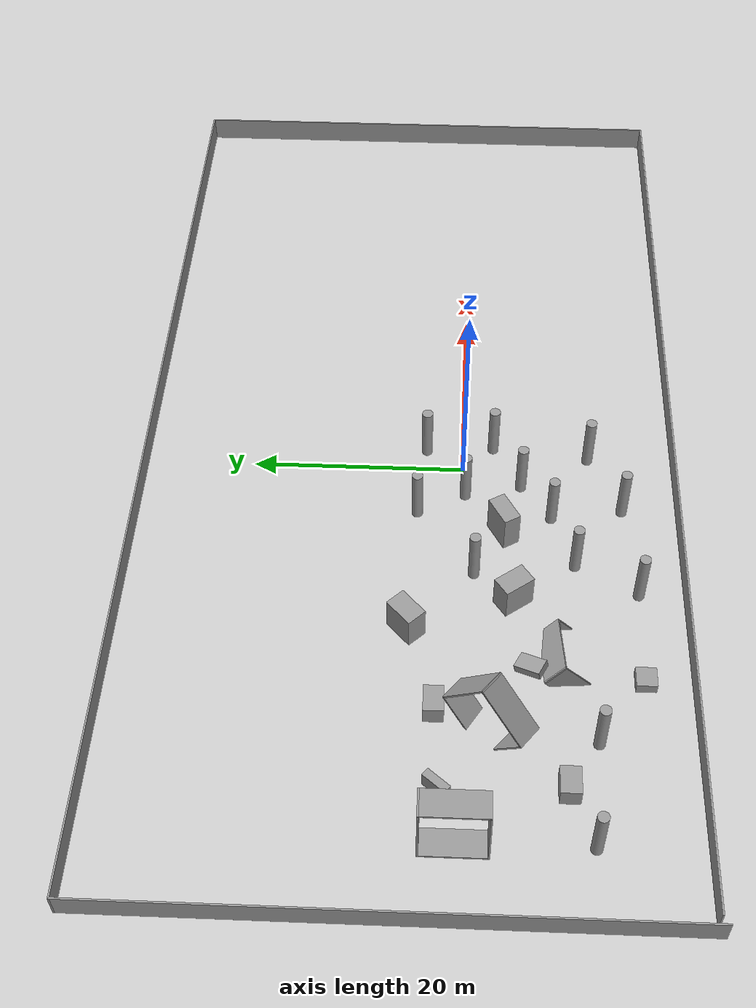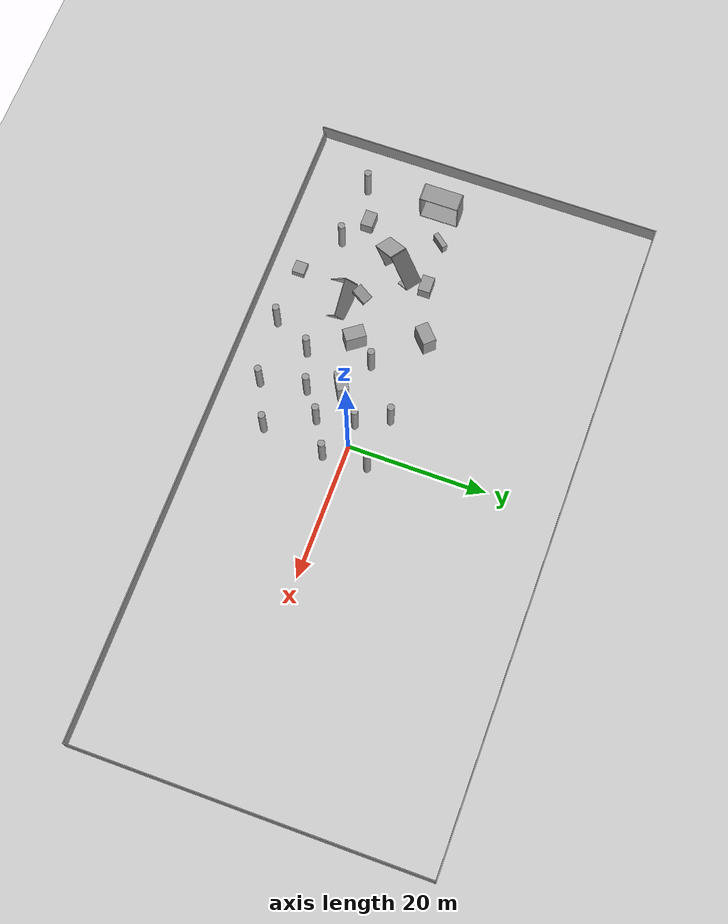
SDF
<sdf version="1.6">
 <world name="default">
  <model name="ground_plane">
   <static>1</static>
   <link name="link">
    <collision name="collision">
     <geometry><plane><normal>0 0 1</normal><size>100 100</size></plane></geometry>
     <surface><friction><ode><mu>100</mu><mu2>50</mu2></ode></friction></surface>
    </collision>
    <visual name="visual">
     <cast_shadows>0</cast_shadows>
     <geometry><plane><normal>0 0 1</normal><size>100 100</size></plane></geometry>
     <material>
      <script><uri>file://media/materials/scripts/gazebo.material</uri><name>Gazebo/Grey</name></script>
     </material>
    </visual>
   </link>
  </model>
  <model name="unit_cylinder_clone">
   <pose>2.67985 -2.8047 2.75253 0 -0 0.004488</pose>
   <link name="link">
    <inertial>
     <mass>1</mass>
     <inertia><ixx>0.145833</ixx><ixy>0</ixy><ixz>0</ixz><iyy>0.145833</iyy><iyz>0</iyz><izz>0.125</izz></inertia>
    </inertial>
    <collision name="collision">
     <geometry><cylinder><radius>0.5</radius><length>5.50507</length></cylinder></geometry>
    </collision>
    <visual name="visual">
     <geometry><cylinder><radius>0.5</radius><length>5.50507</length></cylinder></geometry>
     <material>
      <script><name>Gazebo/Grey</name><uri>file://media/materials/scripts/gazebo.material</uri></script>
     </material>
    </visual>
   </link>
  </model>
  <model name="unit_cylinder_clone_0">
   <pose>2.22738 3.56207 2.75253 0 -0 0.003085</pose>
   <link name="link">
    <inertial>
     <mass>1</mass>
     <inertia><ixx>0.145833</ixx><ixy>0</ixy><ixz>0</ixz><iyy>0.145833</iyy><iyz>0</iyz><izz>0.125</izz></inertia>
    </inertial>
    <collision name="collision">
     <geometry><cylinder><radius>0.5</radius><length>5.50507</length></cylinder></geometry>
    </collision>
    <visual name="visual">
     <geometry><cylinder><radius>0.5</radius><length>5.50507</length></cylinder></geometry>
     <material>
      <script><name>Gazebo/Grey</name><uri>file://media/materials/scripts/gazebo.material</uri></script>
     </material>
    </visual>
   </link>
  </model>
  <model name="unit_cylinder_clone_9_clone_0">
   <pose>-3.15492 -0.195106 2.75253 0 -0 0.005376</pose>
   <link name="link">
    <inertial>
     <mass>1</mass>
     <inertia><ixx>0.145833</ixx><ixy>0</ixy><ixz>0</ixz><iyy>0.145833</iyy><iyz>0</iyz><izz>0.125</izz></inertia>
    </inertial>
    <collision name="collision">
     <geometry><cylinder><radius>0.5</radius><length>5.50507</length></cylinder></geometry>
    </collision>
    <visual name="visual">
     <geometry><cylinder><radius>0.5</radius><length>5.50507</length></cylinder></geometry>
     <material>
      <script><name>Gazebo/Grey</name><uri>file://media/materials/scripts/gazebo.material</uri></script>
     </material>
    </visual>
   </link>
  </model>
  <model name="unit_cylinder_clone_9_clone_1">
   <pose>-1.9629 -5.42737 2.75253 0 -0 0.00527</pose>
   <link name="link">
    <inertial>
     <mass>1</mass>
     <inertia><ixx>0.145833</ixx><ixy>0</ixy><ixz>0</ixz><iyy>0.145833</iyy><iyz>0</iyz><izz>0.125</izz></inertia>
    </inertial>
    <collision name="collision">
     <geometry><cylinder><radius>0.5</radius><length>5.50507</length></cylinder></geometry>
    </collision>
    <visual name="visual">
     <geometry><cylinder><radius>0.5</radius><length>5.50507</length></cylinder></geometry>
     <material>
      <script><name>Gazebo/Grey</name><uri>file://media/materials/scripts/gazebo.material</uri></script>
     </material>
    </visual>
   </link>
  </model>
  <model name="unit_cylinder_clone_9_clone_3">
   <pose>-5.66981 -8.22129 2.75253 0 -0 0.005161</pose>
   <link name="link">
    <inertial>
     <mass>1</mass>
     <inertia><ixx>0.145833</ixx><ixy>0</ixy><ixz>0</ixz><iyy>0.145833</iyy><iyz>0</iyz><izz>0.125</izz></inertia>
    </inertial>
    <collision name="collision">
     <geometry><cylinder><radius>0.5</radius><length>5.50507</length></cylinder></geometry>
    </collision>
    <visual name="visual">
     <geometry><cylinder><radius>0.5</radius><length>5.50507</length></cylinder></geometry>
     <material>
      <script><name>Gazebo/Grey</name><uri>file://media/materials/scripts/gazebo.material</uri></script>
     </material>
    </visual>
   </link>
  </model>
  <model name="unit_cylinder_clone_9_clone_4">
   <pose>1.59321 -11.8524 2.75253 0 -0 0.005584</pose>
   <link name="link">
    <inertial>
     <mass>1</mass>
     <inertia><ixx>0.145833</ixx><ixy>0</ixy><ixz>0</ixz><iyy>0.145833</iyy><iyz>0</iyz><izz>0.125</izz></inertia>
    </inertial>
    <collision name="collision">
     <geometry><cylinder><radius>0.5</radius><length>5.50507</length></cylinder></geometry>
    </collision>
    <visual name="visual">
     <geometry><cylinder><radius>0.5</radius><length>5.50507</length></cylinder></geometry>
     <material>
      <script><name>Gazebo/Grey</name><uri>file://media/materials/scripts/gazebo.material</uri></script>
     </material>
    </visual>
   </link>
  </model>
  <model name="unit_cylinder_clone_9_clone_5">
   <pose>-5.39726 4.23937 2.75253 0 -0 0.005542</pose>
   <link name="link">
    <inertial>
     <mass>1</mass>
     <inertia><ixx>0.145833</ixx><ixy>0</ixy><ixz>0</ixz><iyy>0.145833</iyy><iyz>0</iyz><izz>0.125</izz></inertia>
    </inertial>
    <collision name="collision">
     <geometry><cylinder><radius>0.5</radius><length>5.50507</length></cylinder></geometry>
    </collision>
    <visual name="visual">
     <geometry><cylinder><radius>0.5</radius><length>5.50507</length></cylinder></geometry>
     <material>
      <script><name>Gazebo/Grey</name><uri>file://media/materials/scripts/gazebo.material</uri></script>
     </material>
    </visual>
   </link>
  </model>
  <model name="unit_box_2_clone">
   <pose>-7.49323 -3.73623 1.88991 -1e-06 0 -1.04582</pose>
   <link name="link">
    <inertial>
     <mass>1</mass>
     <inertia>
      <ixx>0.166667</ixx>
      <ixy>0</ixy>
      <ixz>0</ixz>
      <iyy>0.166667</iyy>
      <iyz>0</iyz>
      <izz>0.166667</izz>
     </inertia>
    </inertial>
    <collision name="collision"><geometry><box><size>1.62301 2.95919 3.77983</size></box></geometry></collision>
    <visual name="visual">
     <geometry><box><size>1.62301 2.95919 3.77983</size></box></geometry>
     <material>
      <script><name>Gazebo/Grey</name><uri>file://media/materials/scripts/gazebo.material</uri></script>
     </material>
    </visual>
   </link>
  </model>
  <model name="unit_box_2_clone_1">
   <pose>-15.0529 -4.60285 1.66336 1e-06 -0 0.629421</pose>
   <link name="link">
    <inertial>
     <mass>1</mass>
     <inertia>
      <ixx>0.166667</ixx>
      <ixy>0</ixy>
      <ixz>0</ixz>
      <iyy>0.166667</iyy>
      <iyz>0</iyz>
      <izz>0.166667</izz>
     </inertia>
    </inertial>
    <collision name="collision"><geometry><box><size>1.91266 2.95919 3.32673</size></box></geometry></collision>
    <visual name="visual">
     <geometry><box><size>1.91266 2.95919 3.32673</size></box></geometry>
     <material>
      <script><name>Gazebo/Grey</name><uri>file://media/materials/scripts/gazebo.material</uri></script>
     </material>
    </visual>
   </link>
  </model>
  <model name="unit_cylinder_clone_9_clone_5_clone">
   <pose>-12.2421 -1.09463 2.75253 0 -0 0.005619</pose>
   <link name="link">
    <inertial>
     <mass>1</mass>
     <inertia><ixx>0.145833</ixx><ixy>0</ixy><ixz>0</ixz><iyy>0.145833</iyy><iyz>0</iyz><izz>0.125</izz></inertia>
    </inertial>
    <collision name="collision">
     <geometry><cylinder><radius>0.5</radius><length>5.50507</length></cylinder></geometry>
    </collision>
    <visual name="visual">
     <geometry><cylinder><radius>0.5</radius><length>5.50507</length></cylinder></geometry>
     <material>
      <script><name>Gazebo/Grey</name><uri>file://media/materials/scripts/gazebo.material</uri></script>
     </material>
    </visual>
   </link>
  </model>
  <model name="unit_cylinder_clone_9_clone_5_clone_0">
   <pose>-11.0811 -10.24 2.75253 0 -0 0.005805</pose>
   <link name="link">
    <inertial>
     <mass>1</mass>
     <inertia><ixx>0.145833</ixx><ixy>0</ixy><ixz>0</ixz><iyy>0.145833</iyy><iyz>0</iyz><izz>0.125</izz></inertia>
    </inertial>
    <collision name="collision">
     <geometry><cylinder><radius>0.5</radius><length>5.50507</length></cylinder></geometry>
    </collision>
    <visual name="visual">
     <geometry><cylinder><radius>0.5</radius><length>5.50507</length></cylinder></geometry>
     <material>
      <script><name>Gazebo/Grey</name><uri>file://media/materials/scripts/gazebo.material</uri></script>
     </material>
    </visual>
   </link>
  </model>
  <model name="vRoom_clone_3_clone_clone_9_clone_2_clone_0">
   <link name="Wall_0">
    <pose>-2.8 -0 -1e-06 -0 -0 -1.5708</pose>
    <velocity_decay><linear>0</linear><angular>0</angular></velocity_decay>
    <visual name="Wall_0_Visual">
     <pose>0 0 1.25 0 -0 0</pose>
     <geometry><box><size>5.75 0.15 2.5</size></box></geometry>
     <material>
      <script><uri>file://media/materials/scripts/gazebo.material</uri><name>Gazebo/Grey</name></script>
      <ambient>1 1 1 1</ambient>
     </material>
    </visual>
    <collision name="Wall_0_Collision">
     <pose>0 0 1.25 0 -0 0</pose>
     <geometry><box><size>5.75 0.15 2.5</size></box></geometry>
     <surface>
      <friction>
       <ode><mu>1</mu><mu2>1</mu2><fdir1>0 0 0</fdir1><slip1>0</slip1><slip2>0</slip2></ode>
       <torsional>
        <coefficient>1</coefficient>
        <patch_radius>0</patch_radius>
        <surface_radius>0</surface_radius>
        <use_patch_radius>1</use_patch_radius>
        <ode><slip>0</slip></ode>
       </torsional>
      </friction>
      <bounce><restitution_coefficient>0</restitution_coefficient><threshold>1e+06</threshold></bounce>
      <contact>
       <collide_without_contact>0</collide_without_contact>
       <collide_without_contact_bitmask>1</collide_without_contact_bitmask>
       <collide_bitmask>1</collide_bitmask>
       <ode>
        <soft_cfm>0</soft_cfm>
        <soft_erp>0.2</soft_erp>
        <kp>1e+13</kp>
        <kd>1</kd>
        <max_vel>0.01</max_vel>
        <min_depth>0</min_depth>
       </ode>
       <bullet>
        <split_impulse>1</split_impulse>
        <split_impulse_penetration_threshold>-0.01</split_impulse_penetration_threshold>
        <soft_cfm>0</soft_cfm>
        <soft_erp>0.2</soft_erp>
        <kp>1e+13</kp>
        <kd>1</kd>
       </bullet>
      </contact>
     </surface>
    </collision>
   </link>
   <link name="Wall_1">
    <pose>2e-06 -2.8 2e-06 0 -0 0</pose>
    <velocity_decay><linear>0</linear><angular>0</angular></velocity_decay>
    <visual name="Wall_1_Visual">
     <pose>0 0 1.25 0 -0 0</pose>
     <geometry><box><size>5.75 0.15 2.5</size></box></geometry>
     <material>
      <script><uri>file://media/materials/scripts/gazebo.material</uri><name>Gazebo/Grey</name></script>
      <ambient>1 1 1 1</ambient>
     </material>
    </visual>
    <collision name="Wall_1_Collision">
     <pose>0 0 1.25 0 -0 0</pose>
     <geometry><box><size>5.75 0.15 2.5</size></box></geometry>
     <surface>
      <friction>
       <ode><mu>1</mu><mu2>1</mu2><fdir1>0 0 0</fdir1><slip1>0</slip1><slip2>0</slip2></ode>
       <torsional>
        <coefficient>1</coefficient>
        <patch_radius>0</patch_radius>
        <surface_radius>0</surface_radius>
        <use_patch_radius>1</use_patch_radius>
        <ode><slip>0</slip></ode>
       </torsional>
      </friction>
      <bounce><restitution_coefficient>0</restitution_coefficient><threshold>1e+06</threshold></bounce>
      <contact>
       <collide_without_contact>0</collide_without_contact>
       <collide_without_contact_bitmask>1</collide_without_contact_bitmask>
       <collide_bitmask>1</collide_bitmask>
       <ode>
        <soft_cfm>0</soft_cfm>
        <soft_erp>0.2</soft_erp>
        <kp>1e+13</kp>
        <kd>1</kd>
        <max_vel>0.01</max_vel>
        <min_depth>0</min_depth>
       </ode>
       <bullet>
        <split_impulse>1</split_impulse>
        <split_impulse_penetration_threshold>-0.01</split_impulse_penetration_threshold>
        <soft_cfm>0</soft_cfm>
        <soft_erp>0.2</soft_erp>
        <kp>1e+13</kp>
        <kd>1</kd>
       </bullet>
      </contact>
     </surface>
    </collision>
   </link>
   <link name="Wall_2">
    <pose>2.8 0 1e-06 0 -0 1.5708</pose>
    <velocity_decay><linear>0</linear><angular>0</angular></velocity_decay>
    <visual name="Wall_2_Visual">
     <pose>0 0 1.25 0 -0 0</pose>
     <geometry><box><size>5.75 0.15 2.5</size></box></geometry>
     <material>
      <script><uri>file://media/materials/scripts/gazebo.material</uri><name>Gazebo/Grey</name></script>
      <ambient>1 1 1 1</ambient>
     </material>
    </visual>
    <collision name="Wall_2_Collision">
     <pose>0 0 1.25 0 -0 0</pose>
     <geometry><box><size>5.75 0.15 2.5</size></box></geometry>
     <surface>
      <friction>
       <ode><mu>1</mu><mu2>1</mu2><fdir1>0 0 0</fdir1><slip1>0</slip1><slip2>0</slip2></ode>
       <torsional>
        <coefficient>1</coefficient>
        <patch_radius>0</patch_radius>
        <surface_radius>0</surface_radius>
        <use_patch_radius>1</use_patch_radius>
        <ode><slip>0</slip></ode>
       </torsional>
      </friction>
      <bounce><restitution_coefficient>0</restitution_coefficient><threshold>1e+06</threshold></bounce>
      <contact>
       <collide_without_contact>0</collide_without_contact>
       <collide_without_contact_bitmask>1</collide_without_contact_bitmask>
       <collide_bitmask>1</collide_bitmask>
       <ode>
        <soft_cfm>0</soft_cfm>
        <soft_erp>0.2</soft_erp>
        <kp>1e+13</kp>
        <kd>1</kd>
        <max_vel>0.01</max_vel>
        <min_depth>0</min_depth>
       </ode>
       <bullet>
        <split_impulse>1</split_impulse>
        <split_impulse_penetration_threshold>-0.01</split_impulse_penetration_threshold>
        <soft_cfm>0</soft_cfm>
        <soft_erp>0.2</soft_erp>
        <kp>1e+13</kp>
        <kd>1</kd>
       </bullet>
      </contact>
     </surface>
    </collision>
   </link>
   <link name="Wall_3">
    <pose>-2e-06 2.8 -2e-06 0 -0 3.14159</pose>
    <velocity_decay><linear>0</linear><angular>0</angular></velocity_decay>
    <visual name="Wall_3_Visual">
     <pose>0 0 1.25 0 -0 0</pose>
     <geometry><box><size>5.75 0.15 2.5</size></box></geometry>
     <material>
      <script><uri>file://media/materials/scripts/gazebo.material</uri><name>Gazebo/Grey</name></script>
      <ambient>1 1 1 1</ambient>
     </material>
    </visual>
    <collision name="Wall_3_Collision">
     <pose>0 0 1.25 0 -0 0</pose>
     <geometry><box><size>5.75 0.15 2.5</size></box></geometry>
     <surface>
      <friction>
       <ode><mu>1</mu><mu2>1</mu2><fdir1>0 0 0</fdir1><slip1>0</slip1><slip2>0</slip2></ode>
       <torsional>
        <coefficient>1</coefficient>
        <patch_radius>0</patch_radius>
        <surface_radius>0</surface_radius>
        <use_patch_radius>1</use_patch_radius>
        <ode><slip>0</slip></ode>
       </torsional>
      </friction>
      <bounce><restitution_coefficient>0</restitution_coefficient><threshold>1e+06</threshold></bounce>
      <contact>
       <collide_without_contact>0</collide_without_contact>
       <collide_without_contact_bitmask>1</collide_without_contact_bitmask>
       <collide_bitmask>1</collide_bitmask>
       <ode>
        <soft_cfm>0</soft_cfm>
        <soft_erp>0.2</soft_erp>
        <kp>1e+13</kp>
        <kd>1</kd>
        <max_vel>0.01</max_vel>
        <min_depth>0</min_depth>
       </ode>
       <bullet>
        <split_impulse>1</split_impulse>
        <split_impulse_penetration_threshold>-0.01</split_impulse_penetration_threshold>
        <soft_cfm>0</soft_cfm>
        <soft_erp>0.2</soft_erp>
        <kp>1e+13</kp>
        <kd>1</kd>
       </bullet>
      </contact>
     </surface>
    </collision>
   </link>
   <static>1</static>
   <pose>-20.5223 -10.7964 -0.348991 2.375 -0.169882 -3.06562</pose>
  </model>
  <model name="vRoom_clone_3_clone_clone_9_clone_clone_0">
   <link name="Wall_0">
    <pose>-2.8 -0 -1e-06 -0 -0 -1.5708</pose>
    <velocity_decay><linear>0</linear><angular>0</angular></velocity_decay>
    <visual name="Wall_0_Visual">
     <pose>0 0 1.25 0 -0 0</pose>
     <geometry><box><size>5.75 0.15 2.5</size></box></geometry>
     <material>
      <script><uri>file://media/materials/scripts/gazebo.material</uri><name>Gazebo/Grey</name></script>
      <ambient>1 1 1 1</ambient>
     </material>
    </visual>
    <collision name="Wall_0_Collision">
     <pose>0 0 1.25 0 -0 0</pose>
     <geometry><box><size>5.75 0.15 2.5</size></box></geometry>
     <surface>
      <friction>
       <ode><mu>1</mu><mu2>1</mu2><fdir1>0 0 0</fdir1><slip1>0</slip1><slip2>0</slip2></ode>
       <torsional>
        <coefficient>1</coefficient>
        <patch_radius>0</patch_radius>
        <surface_radius>0</surface_radius>
        <use_patch_radius>1</use_patch_radius>
        <ode><slip>0</slip></ode>
       </torsional>
      </friction>
      <bounce><restitution_coefficient>0</restitution_coefficient><threshold>1e+06</threshold></bounce>
      <contact>
       <collide_without_contact>0</collide_without_contact>
       <collide_without_contact_bitmask>1</collide_without_contact_bitmask>
       <collide_bitmask>1</collide_bitmask>
       <ode>
        <soft_cfm>0</soft_cfm>
        <soft_erp>0.2</soft_erp>
        <kp>1e+13</kp>
        <kd>1</kd>
        <max_vel>0.01</max_vel>
        <min_depth>0</min_depth>
       </ode>
       <bullet>
        <split_impulse>1</split_impulse>
        <split_impulse_penetration_threshold>-0.01</split_impulse_penetration_threshold>
        <soft_cfm>0</soft_cfm>
        <soft_erp>0.2</soft_erp>
        <kp>1e+13</kp>
        <kd>1</kd>
       </bullet>
      </contact>
     </surface>
    </collision>
   </link>
   <link name="Wall_1">
    <pose>2e-06 -2.8 2e-06 0 -0 0</pose>
    <velocity_decay><linear>0</linear><angular>0</angular></velocity_decay>
    <visual name="Wall_1_Visual">
     <pose>0 0 1.25 0 -0 0</pose>
     <geometry><box><size>5.75 0.15 2.5</size></box></geometry>
     <material>
      <script><uri>file://media/materials/scripts/gazebo.material</uri><name>Gazebo/Grey</name></script>
      <ambient>1 1 1 1</ambient>
     </material>
    </visual>
    <collision name="Wall_1_Collision">
     <pose>0 0 1.25 0 -0 0</pose>
     <geometry><box><size>5.75 0.15 2.5</size></box></geometry>
     <surface>
      <friction>
       <ode><mu>1</mu><mu2>1</mu2><fdir1>0 0 0</fdir1><slip1>0</slip1><slip2>0</slip2></ode>
       <torsional>
        <coefficient>1</coefficient>
        <patch_radius>0</patch_radius>
        <surface_radius>0</surface_radius>
        <use_patch_radius>1</use_patch_radius>
        <ode><slip>0</slip></ode>
       </torsional>
      </friction>
      <bounce><restitution_coefficient>0</restitution_coefficient><threshold>1e+06</threshold></bounce>
      <contact>
       <collide_without_contact>0</collide_without_contact>
       <collide_without_contact_bitmask>1</collide_without_contact_bitmask>
       <collide_bitmask>1</collide_bitmask>
       <ode>
        <soft_cfm>0</soft_cfm>
        <soft_erp>0.2</soft_erp>
        <kp>1e+13</kp>
        <kd>1</kd>
        <max_vel>0.01</max_vel>
        <min_depth>0</min_depth>
       </ode>
       <bullet>
        <split_impulse>1</split_impulse>
        <split_impulse_penetration_threshold>-0.01</split_impulse_penetration_threshold>
        <soft_cfm>0</soft_cfm>
        <soft_erp>0.2</soft_erp>
        <kp>1e+13</kp>
        <kd>1</kd>
       </bullet>
      </contact>
     </surface>
    </collision>
   </link>
   <link name="Wall_2">
    <pose>2.8 0 1e-06 0 -0 1.5708</pose>
    <velocity_decay><linear>0</linear><angular>0</angular></velocity_decay>
    <visual name="Wall_2_Visual">
     <pose>0 0 1.25 0 -0 0</pose>
     <geometry><box><size>5.75 0.15 2.5</size></box></geometry>
     <material>
      <script><uri>file://media/materials/scripts/gazebo.material</uri><name>Gazebo/Grey</name></script>
      <ambient>1 1 1 1</ambient>
     </material>
    </visual>
    <collision name="Wall_2_Collision">
     <pose>0 0 1.25 0 -0 0</pose>
     <geometry><box><size>5.75 0.15 2.5</size></box></geometry>
     <surface>
      <friction>
       <ode><mu>1</mu><mu2>1</mu2><fdir1>0 0 0</fdir1><slip1>0</slip1><slip2>0</slip2></ode>
       <torsional>
        <coefficient>1</coefficient>
        <patch_radius>0</patch_radius>
        <surface_radius>0</surface_radius>
        <use_patch_radius>1</use_patch_radius>
        <ode><slip>0</slip></ode>
       </torsional>
      </friction>
      <bounce><restitution_coefficient>0</restitution_coefficient><threshold>1e+06</threshold></bounce>
      <contact>
       <collide_without_contact>0</collide_without_contact>
       <collide_without_contact_bitmask>1</collide_without_contact_bitmask>
       <collide_bitmask>1</collide_bitmask>
       <ode>
        <soft_cfm>0</soft_cfm>
        <soft_erp>0.2</soft_erp>
        <kp>1e+13</kp>
        <kd>1</kd>
        <max_vel>0.01</max_vel>
        <min_depth>0</min_depth>
       </ode>
       <bullet>
        <split_impulse>1</split_impulse>
        <split_impulse_penetration_threshold>-0.01</split_impulse_penetration_threshold>
        <soft_cfm>0</soft_cfm>
        <soft_erp>0.2</soft_erp>
        <kp>1e+13</kp>
        <kd>1</kd>
       </bullet>
      </contact>
     </surface>
    </collision>
   </link>
   <link name="Wall_3">
    <pose>-2e-06 2.8 -2e-06 0 -0 3.14159</pose>
    <velocity_decay><linear>0</linear><angular>0</angular></velocity_decay>
    <visual name="Wall_3_Visual">
     <pose>0 0 1.25 0 -0 0</pose>
     <geometry><box><size>5.75 0.15 2.5</size></box></geometry>
     <material>
      <script><uri>file://media/materials/scripts/gazebo.material</uri><name>Gazebo/Grey</name></script>
      <ambient>1 1 1 1</ambient>
     </material>
    </visual>
    <collision name="Wall_3_Collision">
     <pose>0 0 1.25 0 -0 0</pose>
     <geometry><box><size>5.75 0.15 2.5</size></box></geometry>
     <surface>
      <friction>
       <ode><mu>1</mu><mu2>1</mu2><fdir1>0 0 0</fdir1><slip1>0</slip1><slip2>0</slip2></ode>
       <torsional>
        <coefficient>1</coefficient>
        <patch_radius>0</patch_radius>
        <surface_radius>0</surface_radius>
        <use_patch_radius>1</use_patch_radius>
        <ode><slip>0</slip></ode>
       </torsional>
      </friction>
      <bounce><restitution_coefficient>0</restitution_coefficient><threshold>1e+06</threshold></bounce>
      <contact>
       <collide_without_contact>0</collide_without_contact>
       <collide_without_contact_bitmask>1</collide_without_contact_bitmask>
       <collide_bitmask>1</collide_bitmask>
       <ode>
        <soft_cfm>0</soft_cfm>
        <soft_erp>0.2</soft_erp>
        <kp>1e+13</kp>
        <kd>1</kd>
        <max_vel>0.01</max_vel>
        <min_depth>0</min_depth>
       </ode>
       <bullet>
        <split_impulse>1</split_impulse>
        <split_impulse_penetration_threshold>-0.01</split_impulse_penetration_threshold>
        <soft_cfm>0</soft_cfm>
        <soft_erp>0.2</soft_erp>
        <kp>1e+13</kp>
        <kd>1</kd>
       </bullet>
      </contact>
     </surface>
    </collision>
   </link>
   <static>1</static>
   <pose>-26.7767 -3.33195 2.16038 1.45974 -0.860248 -2.1368</pose>
  </model>
  <model name="unit_cylinder_clone_7_clone_1_clone_6">
   <pose>-29.1099 -11.6645 2.75253 0 -0 0.004882</pose>
   <link name="link">
    <inertial>
     <mass>1</mass>
     <inertia><ixx>0.145833</ixx><ixy>0</ixy><ixz>0</ixz><iyy>0.145833</iyy><iyz>0</iyz><izz>0.125</izz></inertia>
    </inertial>
    <collision name="collision">
     <geometry><cylinder><radius>0.5</radius><length>5.50507</length></cylinder></geometry>
    </collision>
    <visual name="visual">
     <geometry><cylinder><radius>0.5</radius><length>5.50507</length></cylinder></geometry>
     <material>
      <script><name>Gazebo/Grey</name><uri>file://media/materials/scripts/gazebo.material</uri></script>
     </material>
    </visual>
   </link>
  </model>
  <model name="unit_box_clone_clone_clone_0">
   <pose>-33.7123 1.70544 0.788226 -7e-06 -0 -0.682291</pose>
   <link name="link">
    <inertial>
     <mass>1</mass>
     <inertia>
      <ixx>0.166667</ixx>
      <ixy>0</ixy>
      <ixz>0</ixz>
      <iyy>0.166667</iyy>
      <iyz>0</iyz>
      <izz>0.166667</izz>
     </inertia>
    </inertial>
    <collision name="collision"><geometry><box><size>0.770315 2.44518 1.57647</size></box></geometry></collision>
    <visual name="visual">
     <geometry><box><size>0.770315 2.44518 1.57647</size></box></geometry>
     <material>
      <script><name>Gazebo/Grey</name><uri>file://media/materials/scripts/gazebo.material</uri></script>
     </material>
    </visual>
   </link>
  </model>
  <model name="unit_box_clone_clone_clone_1">
   <pose>-22.1221 -6.07576 0.657028 -1.57082 -1.33781 1.09114</pose>
   <link name="link">
    <inertial>
     <mass>1</mass>
     <inertia>
      <ixx>0.166667</ixx>
      <ixy>0</ixy>
      <ixz>0</ixz>
      <iyy>0.166667</iyy>
      <iyz>0</iyz>
      <izz>0.166667</izz>
     </inertia>
    </inertial>
    <collision name="collision"><geometry><box><size>0.770315 2.44518 1.57647</size></box></geometry></collision>
    <visual name="visual">
     <geometry><box><size>0.770315 2.44518 1.57647</size></box></geometry>
     <material>
      <script><name>Gazebo/Grey</name><uri>file://media/materials/scripts/gazebo.material</uri></script>
     </material>
    </visual>
   </link>
  </model>
  <model name="unit_box_clone_1_clone">
   <pose>-33.3357 -9.06014 0.926305 0 -0 1.57092</pose>
   <link name="link">
    <inertial>
     <mass>1</mass>
     <inertia>
      <ixx>0.166667</ixx>
      <ixy>0</ixy>
      <ixz>0</ixz>
      <iyy>0.166667</iyy>
      <iyz>0</iyz>
      <izz>0.166667</izz>
     </inertia>
    </inertial>
    <collision name="collision"><geometry><box><size>1.76997 2.44518 1.85261</size></box></geometry></collision>
    <visual name="visual">
     <geometry><box><size>1.76997 2.44518 1.85261</size></box></geometry>
     <material>
      <script><name>Gazebo/Grey</name><uri>file://media/materials/scripts/gazebo.material</uri></script>
     </material>
    </visual>
   </link>
  </model>
  <model name="unit_box_clone_1_clone_0">
   <pose>-26.3002 2.15248 0.926301 0 -5e-06 1.5861</pose>
   <link name="link">
    <inertial>
     <mass>1</mass>
     <inertia>
      <ixx>0.166667</ixx>
      <ixy>0</ixy>
      <ixz>0</ixz>
      <iyy>0.166667</iyy>
      <iyz>0</iyz>
      <izz>0.166667</izz>
     </inertia>
    </inertial>
    <collision name="collision"><geometry><box><size>1.76997 2.44518 1.85261</size></box></geometry></collision>
    <visual name="visual">
     <geometry><box><size>1.76997 2.44518 1.85261</size></box></geometry>
     <material>
      <script><name>Gazebo/Grey</name><uri>file://media/materials/scripts/gazebo.material</uri></script>
     </material>
    </visual>
   </link>
  </model>
  <model name="unit_cylinder_clone_7_clone_1_clone_clone">
   <pose>-14.0799 -15.8397 2.75253 0 -0 0.004916</pose>
   <link name="link">
    <inertial>
     <mass>1</mass>
     <inertia><ixx>0.145833</ixx><ixy>0</ixy><ixz>0</ixz><iyy>0.145833</iyy><iyz>0</iyz><izz>0.125</izz></inertia>
    </inertial>
    <collision name="collision">
     <geometry><cylinder><radius>0.5</radius><length>5.50507</length></cylinder></geometry>
    </collision>
    <visual name="visual">
     <geometry><cylinder><radius>0.5</radius><length>5.50507</length></cylinder></geometry>
     <material>
      <script><name>Gazebo/Grey</name><uri>file://media/materials/scripts/gazebo.material</uri></script>
     </material>
    </visual>
   </link>
  </model>
  <model name="vRoom_clone_3_clone_clone_9_clone_1_clone">
   <link name="Wall_0">
    <pose>-2.8 -0 -1e-06 -0 -0 -1.5708</pose>
    <velocity_decay><linear>0</linear><angular>0</angular></velocity_decay>
    <visual name="Wall_0_Visual">
     <pose>0 0 1.25 0 -0 0</pose>
     <geometry><box><size>5.75 0.15 2.5</size></box></geometry>
     <material>
      <script><uri>file://media/materials/scripts/gazebo.material</uri><name>Gazebo/Grey</name></script>
      <ambient>1 1 1 1</ambient>
     </material>
    </visual>
    <collision name="Wall_0_Collision">
     <pose>0 0 1.25 0 -0 0</pose>
     <geometry><box><size>5.75 0.15 2.5</size></box></geometry>
     <surface>
      <friction>
       <ode><mu>1</mu><mu2>1</mu2><fdir1>0 0 0</fdir1><slip1>0</slip1><slip2>0</slip2></ode>
       <torsional>
        <coefficient>1</coefficient>
        <patch_radius>0</patch_radius>
        <surface_radius>0</surface_radius>
        <use_patch_radius>1</use_patch_radius>
        <ode><slip>0</slip></ode>
       </torsional>
      </friction>
      <bounce><restitution_coefficient>0</restitution_coefficient><threshold>1e+06</threshold></bounce>
      <contact>
       <collide_without_contact>0</collide_without_contact>
       <collide_without_contact_bitmask>1</collide_without_contact_bitmask>
       <collide_bitmask>1</collide_bitmask>
       <ode>
        <soft_cfm>0</soft_cfm>
        <soft_erp>0.2</soft_erp>
        <kp>1e+13</kp>
        <kd>1</kd>
        <max_vel>0.01</max_vel>
        <min_depth>0</min_depth>
       </ode>
       <bullet>
        <split_impulse>1</split_impulse>
        <split_impulse_penetration_threshold>-0.01</split_impulse_penetration_threshold>
        <soft_cfm>0</soft_cfm>
        <soft_erp>0.2</soft_erp>
        <kp>1e+13</kp>
        <kd>1</kd>
       </bullet>
      </contact>
     </surface>
    </collision>
   </link>
   <link name="Wall_1">
    <pose>2e-06 -2.8 2e-06 0 -0 0</pose>
    <velocity_decay><linear>0</linear><angular>0</angular></velocity_decay>
    <visual name="Wall_1_Visual">
     <pose>0 0 1.25 0 -0 0</pose>
     <geometry><box><size>5.75 0.15 2.5</size></box></geometry>
     <material>
      <script><uri>file://media/materials/scripts/gazebo.material</uri><name>Gazebo/Grey</name></script>
      <ambient>1 1 1 1</ambient>
     </material>
    </visual>
    <collision name="Wall_1_Collision">
     <pose>0 0 1.25 0 -0 0</pose>
     <geometry><box><size>5.75 0.15 2.5</size></box></geometry>
     <surface>
      <friction>
       <ode><mu>1</mu><mu2>1</mu2><fdir1>0 0 0</fdir1><slip1>0</slip1><slip2>0</slip2></ode>
       <torsional>
        <coefficient>1</coefficient>
        <patch_radius>0</patch_radius>
        <surface_radius>0</surface_radius>
        <use_patch_radius>1</use_patch_radius>
        <ode><slip>0</slip></ode>
       </torsional>
      </friction>
      <bounce><restitution_coefficient>0</restitution_coefficient><threshold>1e+06</threshold></bounce>
      <contact>
       <collide_without_contact>0</collide_without_contact>
       <collide_without_contact_bitmask>1</collide_without_contact_bitmask>
       <collide_bitmask>1</collide_bitmask>
       <ode>
        <soft_cfm>0</soft_cfm>
        <soft_erp>0.2</soft_erp>
        <kp>1e+13</kp>
        <kd>1</kd>
        <max_vel>0.01</max_vel>
        <min_depth>0</min_depth>
       </ode>
       <bullet>
        <split_impulse>1</split_impulse>
        <split_impulse_penetration_threshold>-0.01</split_impulse_penetration_threshold>
        <soft_cfm>0</soft_cfm>
        <soft_erp>0.2</soft_erp>
        <kp>1e+13</kp>
        <kd>1</kd>
       </bullet>
      </contact>
     </surface>
    </collision>
   </link>
   <link name="Wall_2">
    <pose>2.8 0 1e-06 0 -0 1.5708</pose>
    <velocity_decay><linear>0</linear><angular>0</angular></velocity_decay>
    <visual name="Wall_2_Visual">
     <pose>0 0 1.25 0 -0 0</pose>
     <geometry><box><size>5.75 0.15 2.5</size></box></geometry>
     <material>
      <script><uri>file://media/materials/scripts/gazebo.material</uri><name>Gazebo/Grey</name></script>
      <ambient>1 1 1 1</ambient>
     </material>
    </visual>
    <collision name="Wall_2_Collision">
     <pose>0 0 1.25 0 -0 0</pose>
     <geometry><box><size>5.75 0.15 2.5</size></box></geometry>
     <surface>
      <friction>
       <ode><mu>1</mu><mu2>1</mu2><fdir1>0 0 0</fdir1><slip1>0</slip1><slip2>0</slip2></ode>
       <torsional>
        <coefficient>1</coefficient>
        <patch_radius>0</patch_radius>
        <surface_radius>0</surface_radius>
        <use_patch_radius>1</use_patch_radius>
        <ode><slip>0</slip></ode>
       </torsional>
      </friction>
      <bounce><restitution_coefficient>0</restitution_coefficient><threshold>1e+06</threshold></bounce>
      <contact>
       <collide_without_contact>0</collide_without_contact>
       <collide_without_contact_bitmask>1</collide_without_contact_bitmask>
       <collide_bitmask>1</collide_bitmask>
       <ode>
        <soft_cfm>0</soft_cfm>
        <soft_erp>0.2</soft_erp>
        <kp>1e+13</kp>
        <kd>1</kd>
        <max_vel>0.01</max_vel>
        <min_depth>0</min_depth>
       </ode>
       <bullet>
        <split_impulse>1</split_impulse>
        <split_impulse_penetration_threshold>-0.01</split_impulse_penetration_threshold>
        <soft_cfm>0</soft_cfm>
        <soft_erp>0.2</soft_erp>
        <kp>1e+13</kp>
        <kd>1</kd>
       </bullet>
      </contact>
     </surface>
    </collision>
   </link>
   <link name="Wall_3">
    <pose>-2e-06 2.8 -2e-06 0 -0 3.14159</pose>
    <velocity_decay><linear>0</linear><angular>0</angular></velocity_decay>
    <visual name="Wall_3_Visual">
     <pose>0 0 1.25 0 -0 0</pose>
     <geometry><box><size>5.75 0.15 2.5</size></box></geometry>
     <material>
      <script><uri>file://media/materials/scripts/gazebo.material</uri><name>Gazebo/Grey</name></script>
      <ambient>1 1 1 1</ambient>
     </material>
    </visual>
    <collision name="Wall_3_Collision">
     <pose>0 0 1.25 0 -0 0</pose>
     <geometry><box><size>5.75 0.15 2.5</size></box></geometry>
     <surface>
      <friction>
       <ode><mu>1</mu><mu2>1</mu2><fdir1>0 0 0</fdir1><slip1>0</slip1><slip2>0</slip2></ode>
       <torsional>
        <coefficient>1</coefficient>
        <patch_radius>0</patch_radius>
        <surface_radius>0</surface_radius>
        <use_patch_radius>1</use_patch_radius>
        <ode><slip>0</slip></ode>
       </torsional>
      </friction>
      <bounce><restitution_coefficient>0</restitution_coefficient><threshold>1e+06</threshold></bounce>
      <contact>
       <collide_without_contact>0</collide_without_contact>
       <collide_without_contact_bitmask>1</collide_without_contact_bitmask>
       <collide_bitmask>1</collide_bitmask>
       <ode>
        <soft_cfm>0</soft_cfm>
        <soft_erp>0.2</soft_erp>
        <kp>1e+13</kp>
        <kd>1</kd>
        <max_vel>0.01</max_vel>
        <min_depth>0</min_depth>
       </ode>
       <bullet>
        <split_impulse>1</split_impulse>
        <split_impulse_penetration_threshold>-0.01</split_impulse_penetration_threshold>
        <soft_cfm>0</soft_cfm>
        <soft_erp>0.2</soft_erp>
        <kp>1e+13</kp>
        <kd>1</kd>
       </bullet>
      </contact>
     </surface>
    </collision>
   </link>
   <static>1</static>
   <pose>-36.9566 0.228058 3.0326 4e-06 -1.47998 -7e-06</pose>
  </model>
  <model name="unit_box_1_clone_clone_0">
   <pose>-23.0249 -15.8554 0.499994 -7e-06 0 2e-06</pose>
   <link name="link">
    <inertial>
     <mass>1</mass>
     <inertia>
      <ixx>0.166667</ixx>
      <ixy>0</ixy>
      <ixz>0</ixz>
      <iyy>0.166667</iyy>
      <iyz>0</iyz>
      <izz>0.166667</izz>
     </inertia>
    </inertial>
    <collision name="collision"><geometry><box><size>1.86589 1.81745 1</size></box></geometry></collision>
    <visual name="visual">
     <geometry><box><size>1.86589 1.81745 1</size></box></geometry>
     <material>
      <script><name>Gazebo/Grey</name><uri>file://media/materials/scripts/gazebo.material</uri></script>
     </material>
    </visual>
   </link>
  </model>
  <model name="unit_cylinder_clone_7_clone_1_clone_2_clone">
   <pose>-38.3442 -11.0312 2.75253 0 -0 0.004531</pose>
   <link name="link">
    <inertial>
     <mass>1</mass>
     <inertia><ixx>0.145833</ixx><ixy>0</ixy><ixz>0</ixz><iyy>0.145833</iyy><iyz>0</iyz><izz>0.125</izz></inertia>
    </inertial>
    <collision name="collision">
     <geometry><cylinder><radius>0.5</radius><length>5.50507</length></cylinder></geometry>
    </collision>
    <visual name="visual">
     <geometry><cylinder><radius>0.5</radius><length>5.50507</length></cylinder></geometry>
     <material>
      <script><name>Gazebo/Grey</name><uri>file://media/materials/scripts/gazebo.material</uri></script>
     </material>
    </visual>
   </link>
  </model>
  <model name="unit_cylinder_clone_7_clone_1_clone_2_clone_1">
   <pose>-4.6033 -14.8031 2.75253 0 -0 0.004617</pose>
   <link name="link">
    <inertial>
     <mass>1</mass>
     <inertia><ixx>0.145833</ixx><ixy>0</ixy><ixz>0</ixz><iyy>0.145833</iyy><iyz>0</iyz><izz>0.125</izz></inertia>
    </inertial>
    <collision name="collision">
     <geometry><cylinder><radius>0.5</radius><length>5.50507</length></cylinder></geometry>
    </collision>
    <visual name="visual">
     <geometry><cylinder><radius>0.5</radius><length>5.50507</length></cylinder></geometry>
     <material>
      <script><name>Gazebo/Grey</name><uri>file://media/materials/scripts/gazebo.material</uri></script>
     </material>
    </visual>
   </link>
  </model>
  <model name="unit_box_2_clone_1_clone">
   <pose>-18.3177 4.77409 1.66336 1e-06 0 -0.814558</pose>
   <link name="link">
    <inertial>
     <mass>1</mass>
     <inertia>
      <ixx>0.166667</ixx>
      <ixy>0</ixy>
      <ixz>0</ixz>
      <iyy>0.166667</iyy>
      <iyz>0</iyz>
      <izz>0.166667</izz>
     </inertia>
    </inertial>
    <collision name="collision"><geometry><box><size>1.91265 2.95919 3.32673</size></box></geometry></collision>
    <visual name="visual">
     <geometry><box><size>1.91265 2.95919 3.32673</size></box></geometry>
     <material>
      <script><name>Gazebo/Grey</name><uri>file://media/materials/scripts/gazebo.material</uri></script>
     </material>
    </visual>
   </link>
  </model>
  <model name="PaperTest1">
   <pose>3 5 0 0 -0 0</pose>
   <link name="Wall_13">
    <collision name="Wall_13_Collision">
     <geometry><box><size>95.5 0.15 2.5</size></box></geometry>
     <pose>0 0 1.25 0 -0 0</pose>
    </collision>
    <visual name="Wall_13_Visual">
     <pose>0 0 1.25 0 -0 0</pose>
     <geometry><box><size>95.5 0.15 2.5</size></box></geometry>
     <material>
      <script><uri>file://media/materials/scripts/gazebo.material</uri><name>Gazebo/Grey</name></script>
      <ambient>1 1 1 1</ambient>
     </material>
     <meta><layer>0</layer></meta>
    </visual>
    <pose>0.375 -24.925 0 0 -0 0</pose>
   </link>
   <link name="Wall_14">
    <collision name="Wall_14_Collision">
     <geometry><box><size>50.5 0.15 2.5</size></box></geometry>
     <pose>0 0 1.25 0 -0 0</pose>
    </collision>
    <visual name="Wall_14_Visual">
     <pose>0 0 1.25 0 -0 0</pose>
     <geometry><box><size>50.5 0.15 2.5</size></box></geometry>
     <material>
      <script><uri>file://media/materials/scripts/gazebo.material</uri><name>Gazebo/Grey</name></script>
      <ambient>1 1 1 1</ambient>
     </material>
     <meta><layer>0</layer></meta>
    </visual>
    <pose>48.05 0.25 0 0 -0 1.5708</pose>
   </link>
   <link name="Wall_15">
    <collision name="Wall_15_Collision">
     <geometry><box><size>96.25 0.15 2.5</size></box></geometry>
     <pose>0 0 1.25 0 -0 0</pose>
    </collision>
    <visual name="Wall_15_Visual">
     <pose>0 0 1.25 0 -0 0</pose>
     <geometry><box><size>96.25 0.15 2.5</size></box></geometry>
     <material>
      <script><uri>file://media/materials/scripts/gazebo.material</uri><name>Gazebo/Grey</name></script>
      <ambient>1 1 1 1</ambient>
     </material>
     <meta><layer>0</layer></meta>
    </visual>
    <pose>-0 25.425 0 0 -0 3.14159</pose>
   </link>
   <link name="Wall_16">
    <collision name="Wall_16_Collision">
     <geometry><box><size>51 0.15 2.5</size></box></geometry>
     <pose>0 0 1.25 0 -0 0</pose>
    </collision>
    <visual name="Wall_16_Visual">
     <pose>0 0 1.25 0 -0 0</pose>
     <geometry><box><size>51 0.15 2.5</size></box></geometry>
     <material>
      <script><uri>file://media/materials/scripts/gazebo.material</uri><name>Gazebo/Grey</name></script>
      <ambient>1 1 1 1</ambient>
     </material>
     <meta><layer>0</layer></meta>
    </visual>
    <pose>-48.05 0 0 0 -0 -1.5708</pose>
   </link>
   <static>1</static>
  </model>
 </world>
</sdf>
